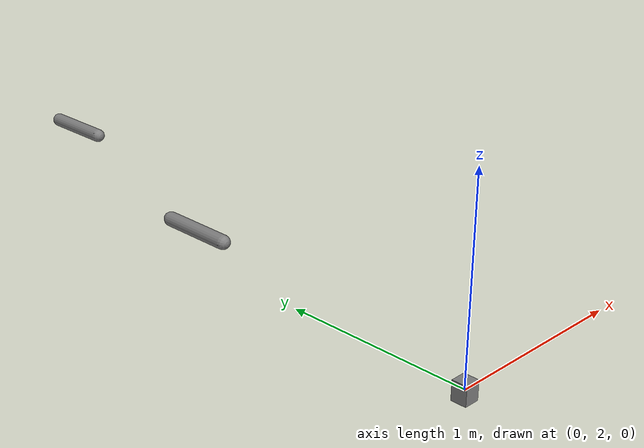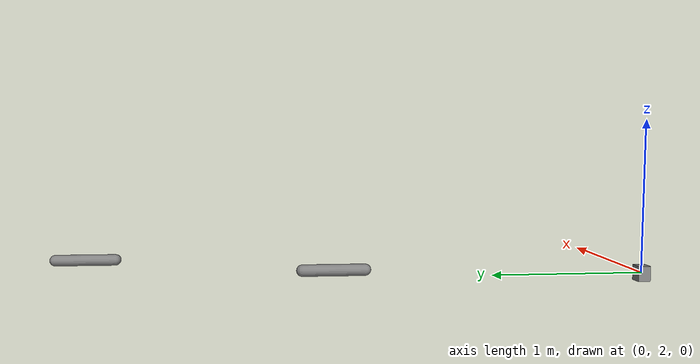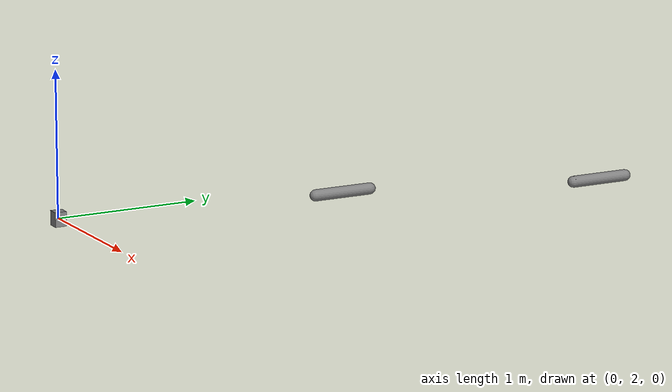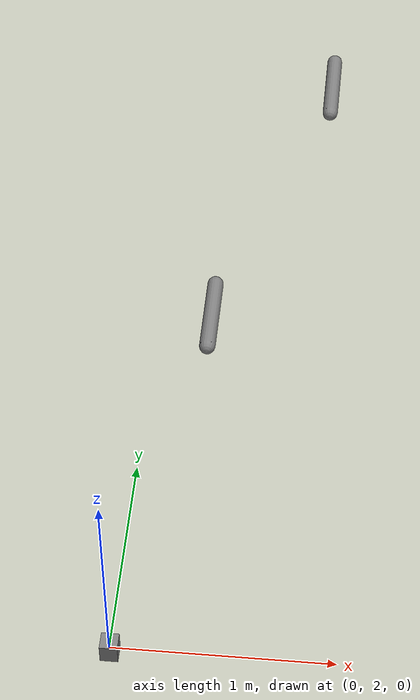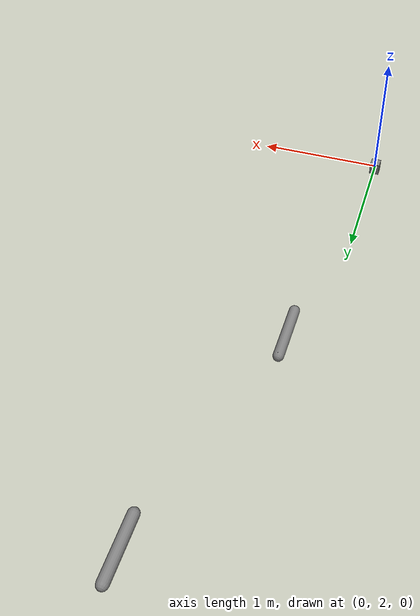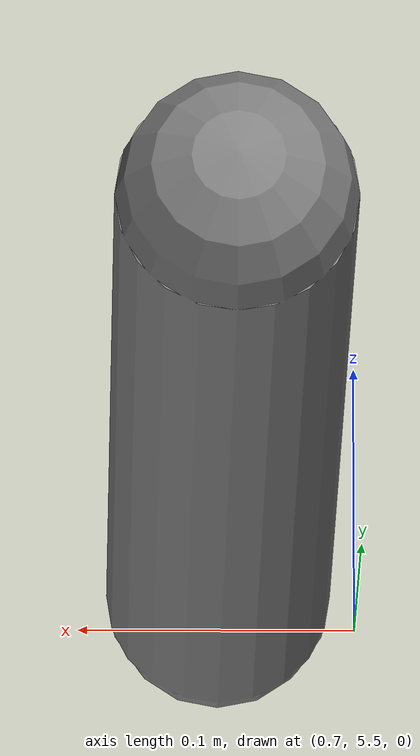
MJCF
<mujoco model="acrobot-damped">
  <compiler angle="radian" />
  <option gravity="0 -9.81 0" />
  <default>
    <geom friction="0.5" />
    <joint damping="2.0" />
  </default>
  <custom>
    <numeric name="gravityScale" data="1" />
    <text name="forwardBody" data="link2" />
    <numeric name="groundY" data="-10" />
    <numeric name="groundFriction" data="0.5" />
    <numeric name="groundRestitution" data="0.1" />
    <text name="defaultReward" data="{&quot;forwardVelWeight&quot;:0,&quot;aliveBonusWeight&quot;:0,&quot;ctrlCostWeight&quot;:0.001,&quot;terminationPenalty&quot;:0,&quot;tipHeightWeight&quot;:1,&quot;anchorY&quot;:2,&quot;healthyYMin&quot;:-100,&quot;healthyAngleMax&quot;:100}" />
  </custom>
  <worldbody>
    <geom name="ground" type="plane" pos="0 -10 0" size="50 1 1" friction="0.5 0.005 0.0001" rgba="0.3 0.3 0.3 1" />
    <body name="torso" pos="0 2 0" rl-forge:fixed="true">
      <geom name="torso" type="box" size="0.04 0.04 0.05" mass="1" friction="0" rl-forge:minY="-100" rl-forge:maxAngle="100" />
      <body name="link1" pos="0.25 2 0" rl-forge:spawnAngle="1.5708">
        <joint name="shoulder" type="hinge" axis="0 0 1" limited="true" range="-6.283185307179586 6.283185307179586" pos="0 0.25 0" damping="2.0" rl-forge:maxVelocity="15" rl-forge:anchorA="0 0" />
        <geom name="link1" type="capsule" size="0.04" fromto="0 -0.21 0 0 0.21 0" mass="1" friction="0.3" />
        <body name="link2" pos="0.5 1.75 0">
          <joint name="elbow" type="hinge" axis="0 0 1" limited="true" range="-6.283185307179586 6.283185307179586" pos="0 0.25 0" damping="2.0" rl-forge:maxVelocity="15" rl-forge:anchorA="0 -0.25" />
          <geom name="link2" type="capsule" size="0.04" fromto="0 -0.21 0 0 0.21 0" mass="1" friction="0.3" rl-forge:isFootBody="true" rl-forge:minY="-100" rl-forge:maxAngle="100" />
        </body>
      </body>
    </body>
  </worldbody>
  <actuator>
    <motor name="elbow_motor" joint="elbow" gear="10" ctrllimited="true" ctrlrange="-1 1" />
  </actuator>
</mujoco>
